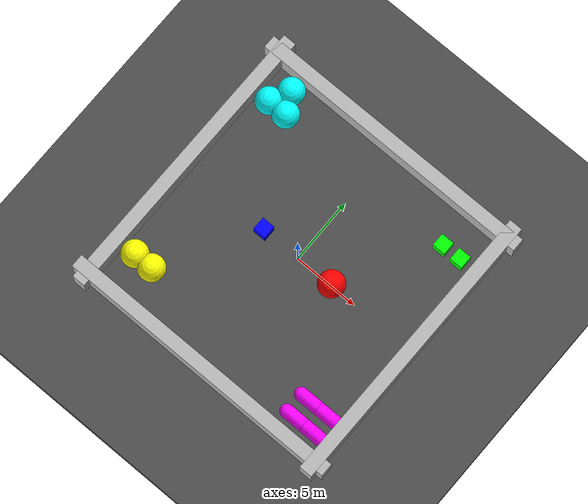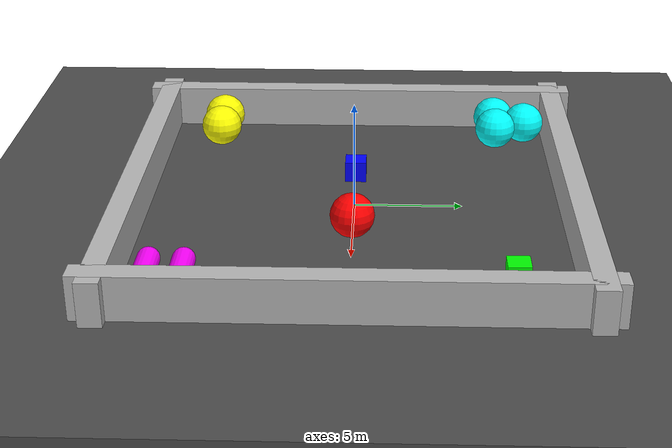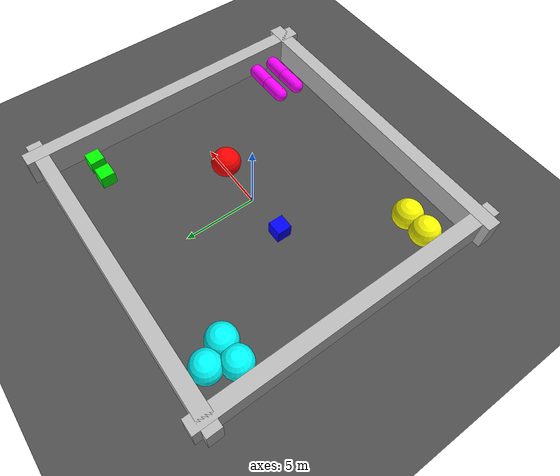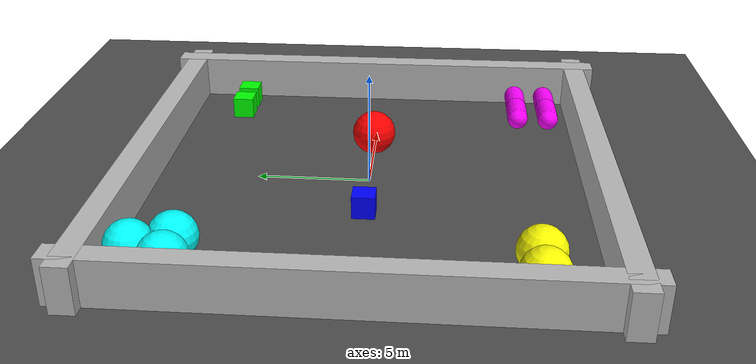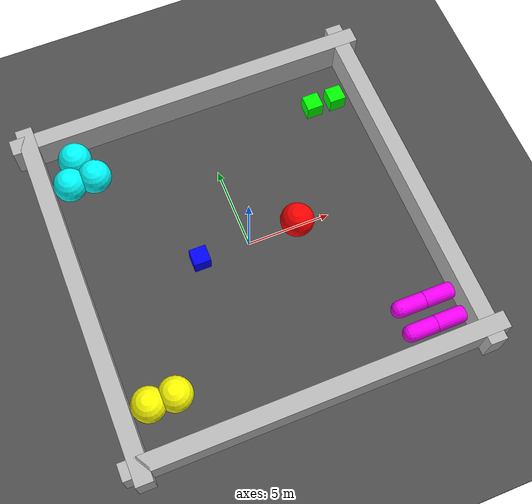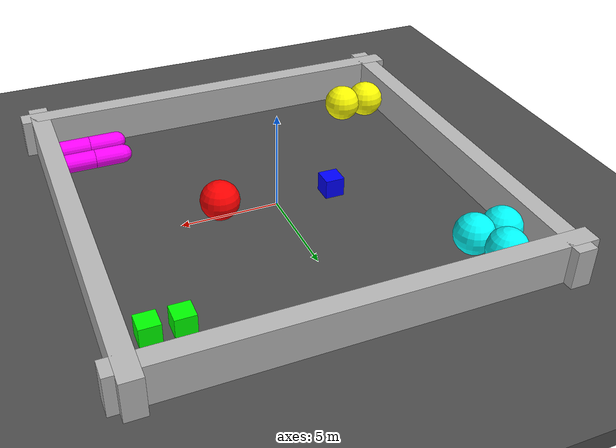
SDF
<?xml version="1.0" ?>
<sdf version="1.7">

  <world name="default">

      <gravity>0 0 -9.8</gravity>

    <magnetic_field>6e-6 2.3e-5 -4.2e-5</magnetic_field>

    <atmosphere type="adiabatic"/>

    <scene>
      <ambient>0.4 0.4 0.4 1</ambient>
      <background>0.7 0.7 0.7 1</background>
      <shadows>true</shadows>
    </scene>

    <physics name='1ms' type='ignored'>
      <max_step_size>0.001</max_step_size>
      <real_time_factor>1</real_time_factor>
      <real_time_update_rate>1000</real_time_update_rate>
    </physics>
    <plugin name='gz::sim::systems::Physics' filename='gz-sim-physics-system'/>
    <plugin name='gz::sim::systems::UserCommands' filename='gz-sim-user-commands-system'/>
    <plugin name='gz::sim::systems::SceneBroadcaster' filename='gz-sim-scene-broadcaster-system'/>
    <plugin name='gz::sim::systems::Contact' filename='gz-sim-contact-system'/>
    <plugin filename="gz-sim-sensors-system" name="gz::sim::systems::Sensors">
      <render_engine>ogre2</render_engine>
    </plugin>

    <!-- GROUND -->

    <model name="ground">
      <static>true</static>
      <pose>0 0 -0.5 0 0 0</pose>

      <link name="ground_link">

        <collision name="ground_collision">
          <geometry>
            <box>
              <size>100 100 1</size>
            </box>
          </geometry>

          <surface>
            <friction>
              <ode>
                <mu>1.0</mu>
                <mu2>1.0</mu2>
              </ode>
            </friction>

            <contact>
              <ode/>
            </contact>
          </surface>
        </collision>

        <visual name="ground_visual">
          <geometry>
            <box>
              <size>100 100 1</size>
            </box>
          </geometry>

          <material>
            <ambient>0.3 0.3 0.3 1</ambient>
            <diffuse>0.3 0.3 0.3 1</diffuse>
          </material>
        </visual>

      </link>
    </model>

    <!-- WALLS -->

    <model name="north_wall">
      <static>true</static>
      <pose>0 10 1 0 0 0</pose>

      <link name="link">

        <collision name="collision">
          <geometry>
            <box>
              <size>22 1 2</size>
            </box>
          </geometry>
        </collision>

        <visual name="visual">
          <geometry>
            <box>
              <size>22 1 2</size>
            </box>
          </geometry>
        </visual>

      </link>
    </model>

    <model name="south_wall">
      <static>true</static>
      <pose>0 -10 1 0 0 0</pose>

      <link name="link">

        <collision name="collision">
          <geometry>
            <box>
              <size>22 1 2</size>
            </box>
          </geometry>
        </collision>

        <visual name="visual">
          <geometry>
            <box>
              <size>22 1 2</size>
            </box>
          </geometry>
        </visual>

      </link>
    </model>

    <model name="east_wall">
      <static>true</static>
      <pose>10 0 1 0 0 0</pose>

      <link name="link">

        <collision name="collision">
          <geometry>
            <box>
              <size>1 22 2</size>
            </box>
          </geometry>
        </collision>

        <visual name="visual">
          <geometry>
            <box>
              <size>1 22 2</size>
            </box>
          </geometry>
        </visual>

      </link>
    </model>

    <model name="west_wall">
      <static>true</static>
      <pose>-10 0 1 0 0 0</pose>

      <link name="link">

        <collision name="collision">
          <geometry>
            <box>
              <size>1 22 2</size>
            </box>
          </geometry>
        </collision>

        <visual name="visual">
          <geometry>
            <box>
              <size>1 22 2</size>
            </box>
          </geometry>
        </visual>

      </link>
    </model>

    <!-- CENTER CUBE -->

    <model name="center_cube">
      <static>true</static>
      <pose>-3 0 0.5 0 0 0</pose>

      <link name="link">

        <self_collide>false</self_collide>

        <velocity_decay>
          <linear>0.01</linear>
          <angular>0.01</angular>
        </velocity_decay>

        <enable_wind>false</enable_wind>

        <inertial>
          <mass>1.0</mass>

          <inertia>
            <ixx>0.166</ixx>
            <iyy>0.166</iyy>
            <izz>0.166</izz>
            <ixy>0</ixy>
            <ixz>0</ixz>
            <iyz>0</iyz>
          </inertia>
        </inertial>

        <collision name="collision">
          <geometry>
            <box>
              <size>1 1 1</size>
            </box>
          </geometry>

          <surface>
            <friction>
              <ode>
                <mu>1.0</mu>
                <mu2>1.0</mu2>
              </ode>
            </friction>

            <contact>
              <ode/>
            </contact>
          </surface>
        </collision>

        <visual name="visual">
          <geometry>
            <box>
              <size>1 1 1</size>
            </box>
          </geometry>

          <material>
            <ambient>0 0 1 1</ambient>
            <diffuse>0 0 1 1</diffuse>
          </material>
        </visual>

      </link>
    </model>

    <!-- CENTER SPHERE -->

    <model name="center_sphere">
      <static>true</static>
      <pose>3 0 1.0 0 0 0</pose>

      <link name="link">

        <self_collide>false</self_collide>

        <velocity_decay>
          <linear>0.01</linear>
          <angular>0.01</angular>
        </velocity_decay>

        <enable_wind>false</enable_wind>

        <inertial>
          <mass>1.0</mass>

          <inertia>
            <ixx>0.4</ixx>
            <iyy>0.4</iyy>
            <izz>0.4</izz>
            <ixy>0</ixy>
            <ixz>0</ixz>
            <iyz>0</iyz>
          </inertia>
        </inertial>

        <collision name="collision">
          <geometry>
            <sphere>
              <radius>1.0</radius>
            </sphere>
          </geometry>

          <surface>
            <friction>
              <ode>
                <mu>1.0</mu>
                <mu2>1.0</mu2>
              </ode>
            </friction>

            <contact>
              <ode/>
            </contact>
          </surface>
        </collision>

        <visual name="visual">
          <geometry>
            <sphere>
              <radius>1.0</radius>
            </sphere>
          </geometry>

          <material>
            <ambient>1 0 0 1</ambient>
            <diffuse>1 0 0 1</diffuse>
          </material>
        </visual>

      </link>
    </model>

    <!-- NE CORNER CUBES -->

    <model name="ne_cube_1">
      <static>true</static>
      <pose>7 7 0.5 0 0 0</pose>

      <link name="link">

        <self_collide>false</self_collide>

        <inertial>
          <mass>1.0</mass>

          <inertia>
            <ixx>0.166</ixx>
            <iyy>0.166</iyy>
            <izz>0.166</izz>
            <ixy>0</ixy>
            <ixz>0</ixz>
            <iyz>0</iyz>
          </inertia>
        </inertial>

        <collision name="collision">
          <geometry>
            <box>
              <size>1 1 1</size>
            </box>
          </geometry>
        </collision>

        <visual name="visual">
          <geometry>
            <box>
              <size>1 1 1</size>
            </box>
          </geometry>

          <material>
            <ambient>0 1 0 1</ambient>
            <diffuse>0 1 0 1</diffuse>
          </material>
        </visual>

      </link>
    </model>

    <model name="ne_cube_2">
      <static>true</static>
      <pose>8.5 7 0.5 0 0 0</pose>

      <link name="link">

        <self_collide>false</self_collide>

        <inertial>
          <mass>1.0</mass>

          <inertia>
            <ixx>0.166</ixx>
            <iyy>0.166</iyy>
            <izz>0.166</izz>
            <ixy>0</ixy>
            <ixz>0</ixz>
            <iyz>0</iyz>
          </inertia>
        </inertial>

        <collision name="collision">
          <geometry>
            <box>
              <size>1 1 1</size>
            </box>
          </geometry>
        </collision>

        <visual name="visual">
          <geometry>
            <box>
              <size>1 1 1</size>
            </box>
          </geometry>

          <material>
            <ambient>0 1 0 1</ambient>
            <diffuse>0 1 0 1</diffuse>
          </material>
        </visual>

      </link>
    </model>

    <!-- SW CORNER SPHERES -->

    <model name="sw_sphere_1">
      <static>true</static>
      <pose>-7 -7 1.0 0 0 0</pose>

      <link name="link">

        <self_collide>false</self_collide>

        <inertial>
          <mass>1.0</mass>

          <inertia>
            <ixx>0.4</ixx>
            <iyy>0.4</iyy>
            <izz>0.4</izz>
            <ixy>0</ixy>
            <ixz>0</ixz>
            <iyz>0</iyz>
          </inertia>
        </inertial>

        <collision name="collision">
          <geometry>
            <sphere>
              <radius>1.0</radius>
            </sphere>
          </geometry>
        </collision>

        <visual name="visual">
          <geometry>
            <sphere>
              <radius>1.0</radius>
            </sphere>
          </geometry>

          <material>
            <ambient>1 1 0 1</ambient>
            <diffuse>1 1 0 1</diffuse>
          </material>
        </visual>

      </link>
    </model>

    <model name="sw_sphere_2">
      <static>true</static>
      <pose>-8.5 -7 1.0 0 0 0</pose>

      <link name="link">

        <self_collide>false</self_collide>

        <inertial>
          <mass>1.0</mass>

          <inertia>
            <ixx>0.4</ixx>
            <iyy>0.4</iyy>
            <izz>0.4</izz>
            <ixy>0</ixy>
            <ixz>0</ixz>
            <iyz>0</iyz>
          </inertia>
        </inertial>

        <collision name="collision">
          <geometry>
            <sphere>
              <radius>1.0</radius>
            </sphere>
          </geometry>
        </collision>

        <visual name="visual">
          <geometry>
            <sphere>
              <radius>1.0</radius>
            </sphere>
          </geometry>

          <material>
            <ambient>1 1 0 1</ambient>
            <diffuse>1 1 0 1</diffuse>
          </material>
        </visual>

      </link>
    </model>

    <!-- NW CORNER SPHERES -->

    <model name="nw_sphere_1">
      <static>true</static>
      <pose>-7 7 1.0 0 0 0</pose>

      <link name="link">

        <collision name="collision">
          <geometry>
            <sphere>
              <radius>1.0</radius>
            </sphere>
          </geometry>
        </collision>

        <visual name="visual">
          <geometry>
            <sphere>
              <radius>1.0</radius>
            </sphere>
          </geometry>

          <material>
            <ambient>0 1 1 1</ambient>
            <diffuse>0 1 1 1</diffuse>
          </material>
        </visual>

      </link>
    </model>

    <model name="nw_sphere_2">
      <static>true</static>
      <pose>-8.5 7 1.0 0 0 0</pose>

      <link name="link">

        <collision name="collision">
          <geometry>
            <sphere>
              <radius>1.0</radius>
            </sphere>
          </geometry>
        </collision>

        <visual name="visual">
          <geometry>
            <sphere>
              <radius>1.0</radius>
            </sphere>
          </geometry>

          <material>
            <ambient>0 1 1 1</ambient>
            <diffuse>0 1 1 1</diffuse>
          </material>
        </visual>

      </link>
    </model>

    <model name="nw_sphere_3">
      <static>true</static>
      <pose>-7.75 8.5 1.0 0 0 0</pose>

      <link name="link">

        <collision name="collision">
          <geometry>
            <sphere>
              <radius>1.0</radius>
            </sphere>
          </geometry>
        </collision>

        <visual name="visual">
          <geometry>
            <sphere>
              <radius>1.0</radius>
            </sphere>
          </geometry>

          <material>
            <ambient>0 1 1 1</ambient>
            <diffuse>0 1 1 1</diffuse>
          </material>
        </visual>

      </link>
    </model>

    <!-- SE CORNER CAPSULES -->

    <model name="se_capsule_1">
      <static>true</static>
      <pose>7 -7 0.5 0 1.5708 0</pose>

      <link name="link">

        <collision name="collision">
          <geometry>
            <capsule>
              <radius>0.5</radius>
              <length>1.5</length>
            </capsule>
          </geometry>
        </collision>

        <visual name="visual">
          <geometry>
            <capsule>
              <radius>0.5</radius>
              <length>1.5</length>
            </capsule>
          </geometry>

          <material>
            <ambient>1 0 1 1</ambient>
            <diffuse>1 0 1 1</diffuse>
          </material>
        </visual>

      </link>
    </model>

    <model name="se_capsule_2">
      <static>true</static>
      <pose>8.5 -7 0.5 0 1.5708 0</pose>

      <link name="link">

        <collision name="collision">
          <geometry>
            <capsule>
              <radius>0.5</radius>
              <length>1.5</length>
            </capsule>
          </geometry>
        </collision>

        <visual name="visual">
          <geometry>
            <capsule>
              <radius>0.5</radius>
              <length>1.5</length>
            </capsule>
          </geometry>

          <material>
            <ambient>1 0 1 1</ambient>
            <diffuse>1 0 1 1</diffuse>
          </material>
        </visual>

      </link>
    </model>

    <model name="se_capsule_3">
      <static>true</static>
      <pose>7 -8.5 0.5 0 1.5708 0</pose>

      <link name="link">

        <collision name="collision">
          <geometry>
            <capsule>
              <radius>0.5</radius>
              <length>1.5</length>
            </capsule>
          </geometry>
        </collision>

        <visual name="visual">
          <geometry>
            <capsule>
              <radius>0.5</radius>
              <length>1.5</length>
            </capsule>
          </geometry>

          <material>
            <ambient>1 0 1 1</ambient>
            <diffuse>1 0 1 1</diffuse>
          </material>
        </visual>

      </link>
    </model>

    <model name="se_capsule_4">
      <static>true</static>
      <pose>8.5 -8.5 0.5 0 1.5708 0</pose>

      <link name="link">

        <collision name="collision">
          <geometry>
            <capsule>
              <radius>0.5</radius>
              <length>1.5</length>
            </capsule>
          </geometry>
        </collision>

        <visual name="visual">
          <geometry>
            <capsule>
              <radius>0.5</radius>
              <length>1.5</length>
            </capsule>
          </geometry>

          <material>
            <ambient>1 0 1 1</ambient>
            <diffuse>1 0 1 1</diffuse>
          </material>
        </visual>

      </link>
    </model>

    <!-- LIGHT -->

    <light name="sun_light" type="directional">

      <cast_shadows>true</cast_shadows>

      <pose>0 0 20 0 0 0</pose>

      <diffuse>1 1 1 1</diffuse>
      <specular>0.2 0.2 0.2 1</specular>

      <attenuation>
        <range>1000</range>
        <constant>0.9</constant>
        <linear>0.01</linear>
        <quadratic>0.001</quadratic>
      </attenuation>

      <direction>-0.5 0.1 -1</direction>

    </light>

  </world>

</sdf>
